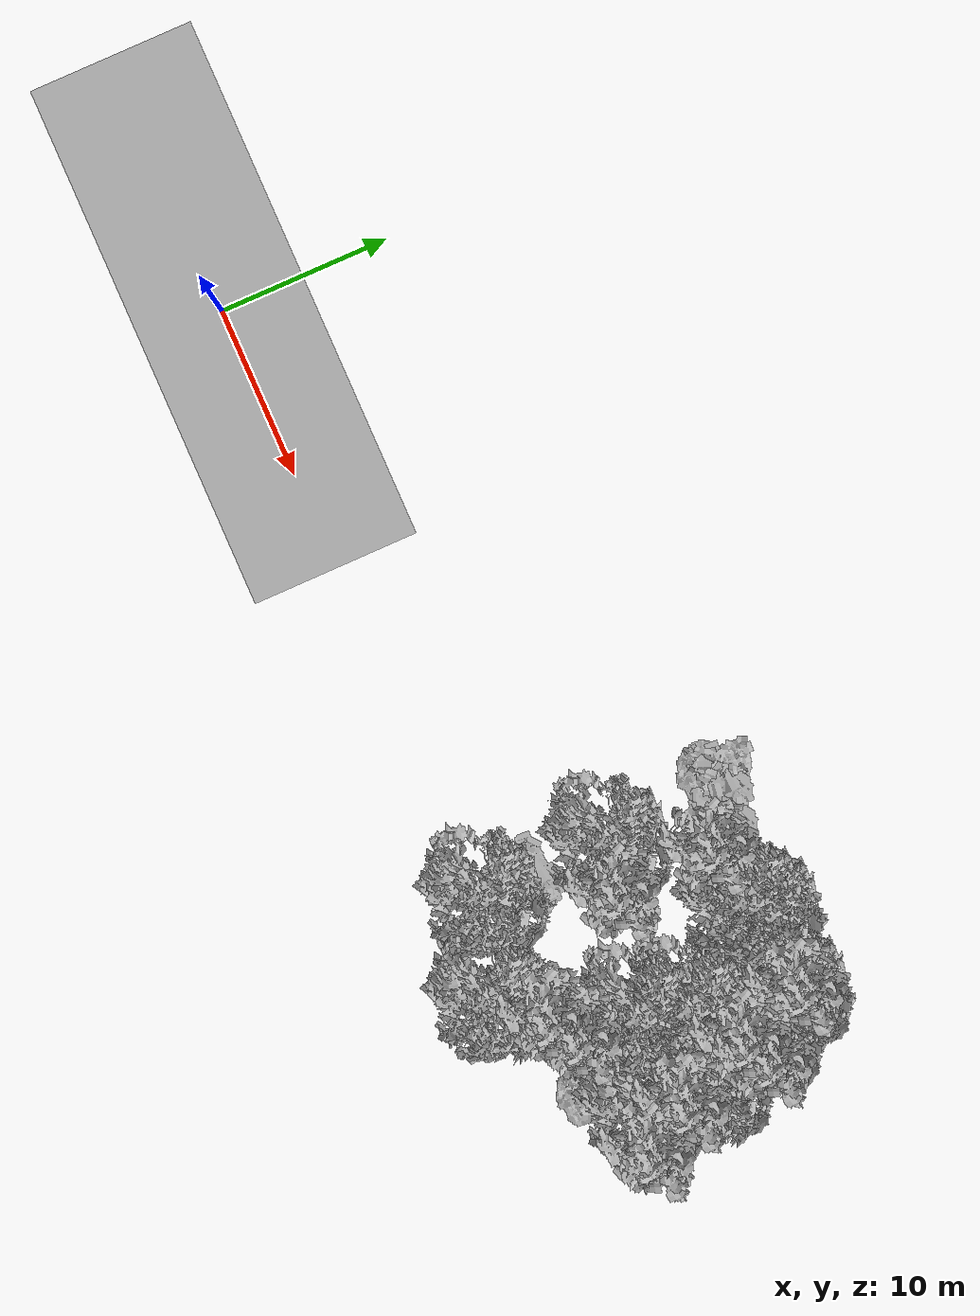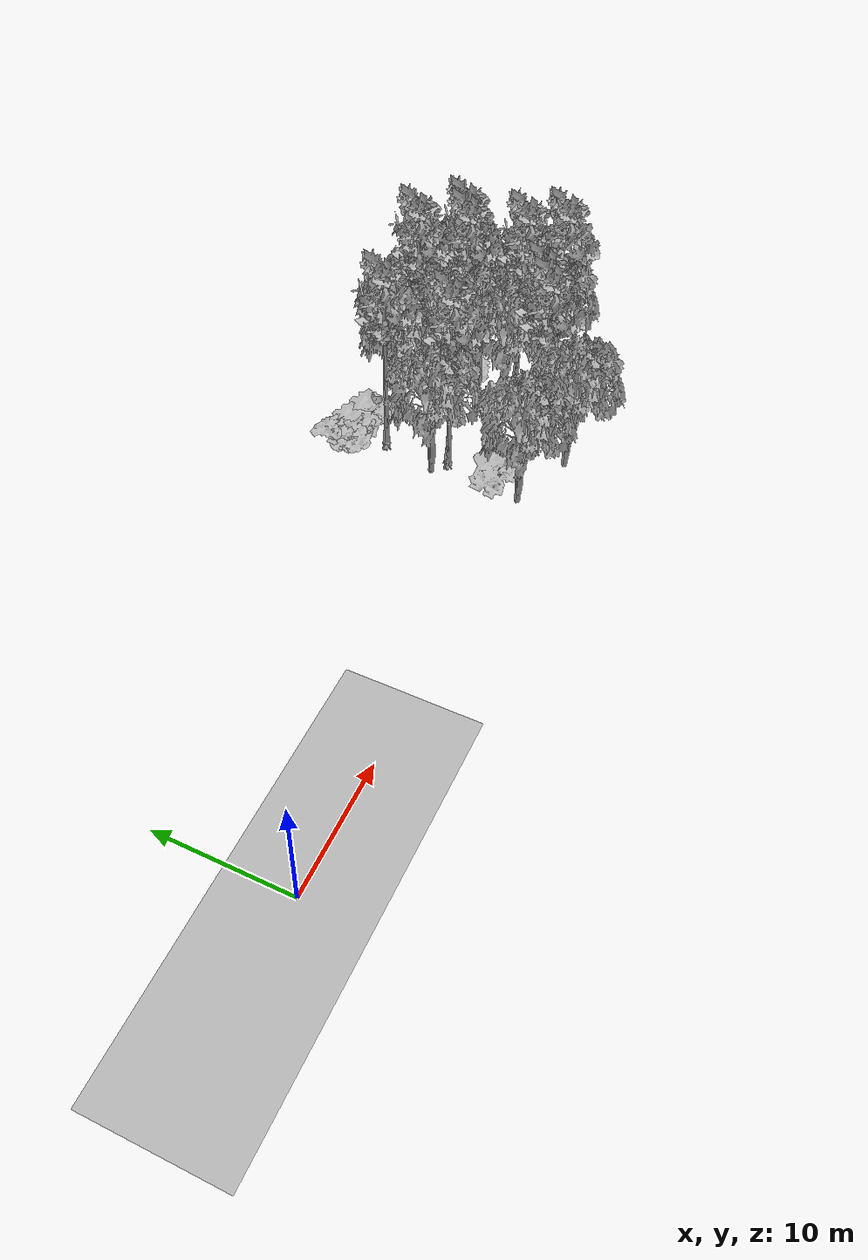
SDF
<sdf version="1.7">
 <world name="default">
  <model name="ground_plane">
   <static>1</static>
   <link name="link">
    <collision name="collision">
     <pose>-50 0 0 0 -0 0</pose>
     <geometry><plane><normal>0 0 1</normal><size>100 100</size></plane></geometry>
     <surface><contact><ode><min_depth>0.01</min_depth><max_vel>0</max_vel></ode></contact></surface>
    </collision>
    <visual name="grass">
     <cast_shadows>0</cast_shadows>
     <geometry>
      <mesh>
       <scale>0.5814285714285714 0.18142857142857144 0.1</scale>
       <uri>file://grass_plane/meshes/grass_plane.dae</uri>
      </mesh>
     </geometry>
    </visual>
   </link>
  </model>
  <model name="Tree 5">
   <static>1</static>
   <pose>35.32782295275514 2.653738546690043 0 1.57079 -0 0</pose>
   <link name="link">
    <collision name="collision">
     <geometry><mesh><scale>3 2 3</scale><uri>model://tree_3/meshes/tree_3.obj</uri></mesh></geometry>
    </collision>
    <visual name="visual">
     <geometry><mesh><scale>3 2 3</scale><uri>model://tree_3/meshes/tree_3.obj</uri></mesh></geometry>
    </visual>
   </link>
  </model>
  <model name="Tree 8">
   <static>1</static>
   <pose>34.388358188484276 0.6151273616343111 0 1.57079 -0 0</pose>
   <link name="link">
    <collision name="collision">
     <geometry><mesh><scale>3.5 5 3.5</scale><uri>model://tree_2/meshes/tree_2.obj</uri></mesh></geometry>
    </collision>
    <visual name="visual">
     <geometry><mesh><scale>3.5 5 3.5</scale><uri>model://tree_2/meshes/tree_2.obj</uri></mesh></geometry>
    </visual>
   </link>
  </model>
  <model name="Tree 14">
   <static>1</static>
   <pose>39.300211839281104 -1.1267173630179173 0 1.57079 -0 0</pose>
   <link name="link">
    <collision name="collision">
     <geometry><mesh><scale>3.5 5 3.5</scale><uri>model://tree_2/meshes/tree_2.obj</uri></mesh></geometry>
    </collision>
    <visual name="visual">
     <geometry><mesh><scale>3.5 5 3.5</scale><uri>model://tree_2/meshes/tree_2.obj</uri></mesh></geometry>
    </visual>
   </link>
  </model>
  <model name="Tree 26">
   <static>1</static>
   <pose>44.80414023411129 9.549171326828073 0 1.57079 -0 0</pose>
   <link name="link">
    <collision name="collision">
     <geometry><mesh><scale>3.5 5 3.5</scale><uri>model://tree_9/meshes/tree_9.obj</uri></mesh></geometry>
    </collision>
    <visual name="visual">
     <geometry><mesh><scale>3.5 5 3.5</scale><uri>model://tree_9/meshes/tree_9.obj</uri></mesh></geometry>
    </visual>
   </link>
  </model>
  <model name="Tree 27">
   <static>1</static>
   <pose>41.535559727347135 2.414591668651479 0 1.57079 -0 0</pose>
   <link name="link">
    <collision name="collision">
     <geometry><mesh><scale>3.5 5 3.5</scale><uri>model://tree_9/meshes/tree_9.obj</uri></mesh></geometry>
    </collision>
    <visual name="visual">
     <geometry><mesh><scale>3.5 5 3.5</scale><uri>model://tree_9/meshes/tree_9.obj</uri></mesh></geometry>
    </visual>
   </link>
  </model>
  <model name="Tree 28">
   <static>1</static>
   <pose>40.68554744184236 13.04091409627748 0 1.57079 -0 0</pose>
   <link name="link">
    <collision name="collision">
     <geometry><mesh><scale>3.5 5 3.5</scale><uri>model://tree_2/meshes/tree_2.obj</uri></mesh></geometry>
    </collision>
    <visual name="visual">
     <geometry><mesh><scale>3.5 5 3.5</scale><uri>model://tree_2/meshes/tree_2.obj</uri></mesh></geometry>
    </visual>
   </link>
  </model>
  <model name="Tree 62">
   <static>1</static>
   <pose>36.753705225285614 13.57287621638202 0 1.57079 -0 0</pose>
   <link name="link">
    <collision name="collision">
     <geometry><mesh><scale>3 2 3</scale><uri>model://tree_3/meshes/tree_3.obj</uri></mesh></geometry>
    </collision>
    <visual name="visual">
     <geometry><mesh><scale>3 2 3</scale><uri>model://tree_3/meshes/tree_3.obj</uri></mesh></geometry>
    </visual>
   </link>
  </model>
  <model name="Tree 76">
   <static>1</static>
   <pose>46.47620760101657 5.7712548583258325 0 1.57079 -0 0</pose>
   <link name="link">
    <collision name="collision">
     <geometry><mesh><scale>3.5 5 3.5</scale><uri>model://tree_9/meshes/tree_9.obj</uri></mesh></geometry>
    </collision>
    <visual name="visual">
     <geometry><mesh><scale>3.5 5 3.5</scale><uri>model://tree_9/meshes/tree_9.obj</uri></mesh></geometry>
    </visual>
   </link>
  </model>
  <model name="Tree 83">
   <static>1</static>
   <pose>43.65297399762686 12.909925443973918 0 1.57079 -0 0</pose>
   <link name="link">
    <collision name="collision">
     <geometry><mesh><scale>3.5 5 3.5</scale><uri>model://tree_9/meshes/tree_9.obj</uri></mesh></geometry>
    </collision>
    <visual name="visual">
     <geometry><mesh><scale>3.5 5 3.5</scale><uri>model://tree_9/meshes/tree_9.obj</uri></mesh></geometry>
    </visual>
   </link>
  </model>
  <model name="Tree 106">
   <static>1</static>
   <pose>40.19865287262731 1.4744564559954938 0 1.57079 -0 0</pose>
   <link name="link">
    <collision name="collision">
     <geometry><mesh><scale>3.5 5 3.5</scale><uri>model://tree_9/meshes/tree_9.obj</uri></mesh></geometry>
    </collision>
    <visual name="visual">
     <geometry><mesh><scale>3.5 5 3.5</scale><uri>model://tree_9/meshes/tree_9.obj</uri></mesh></geometry>
    </visual>
   </link>
  </model>
  <model name="Tree 126">
   <static>1</static>
   <pose>34.953597942023066 14.09231203770052 0 1.57079 -0 0</pose>
   <link name="link">
    <collision name="collision">
     <geometry><mesh><scale>3 2 3</scale><uri>model://tree_3/meshes/tree_3.obj</uri></mesh></geometry>
    </collision>
    <visual name="visual">
     <geometry><mesh><scale>3 2 3</scale><uri>model://tree_3/meshes/tree_3.obj</uri></mesh></geometry>
    </visual>
   </link>
  </model>
  <model name="Tree 151">
   <static>1</static>
   <pose>44.89156026248045 12.742051767275242 0 1.57079 -0 0</pose>
   <link name="link">
    <collision name="collision">
     <geometry><mesh><scale>3.5 5 3.5</scale><uri>model://tree_2/meshes/tree_2.obj</uri></mesh></geometry>
    </collision>
    <visual name="visual">
     <geometry><mesh><scale>3.5 5 3.5</scale><uri>model://tree_2/meshes/tree_2.obj</uri></mesh></geometry>
    </visual>
   </link>
  </model>
  <model name="Tree 185">
   <static>1</static>
   <pose>47.398513358384335 1.4371822637768545 0 1.57079 -0 0</pose>
   <link name="link">
    <collision name="collision">
     <geometry><mesh><scale>4 2.5 4</scale><uri>model://tree_1/meshes/tree_1.obj</uri></mesh></geometry>
    </collision>
    <visual name="visual">
     <geometry><mesh><scale>4 2.5 4</scale><uri>model://tree_1/meshes/tree_1.obj</uri></mesh></geometry>
    </visual>
   </link>
  </model>
  <model name="Tree 197">
   <static>1</static>
   <pose>42.99500072723012 5.381536122347907 0 1.57079 -0 0</pose>
   <link name="link">
    <collision name="collision">
     <geometry><mesh><scale>3.5 5 3.5</scale><uri>model://tree_2/meshes/tree_2.obj</uri></mesh></geometry>
    </collision>
    <visual name="visual">
     <geometry><mesh><scale>3.5 5 3.5</scale><uri>model://tree_2/meshes/tree_2.obj</uri></mesh></geometry>
    </visual>
   </link>
  </model>
  <model name="Tree 200">
   <static>1</static>
   <pose>46.26220225470517 10.520742809994434 0 1.57079 -0 0</pose>
   <link name="link">
    <collision name="collision">
     <geometry><mesh><scale>3.5 5 3.5</scale><uri>model://tree_2/meshes/tree_2.obj</uri></mesh></geometry>
    </collision>
    <visual name="visual">
     <geometry><mesh><scale>3.5 5 3.5</scale><uri>model://tree_2/meshes/tree_2.obj</uri></mesh></geometry>
    </visual>
   </link>
  </model>
  <model name="Tree 214">
   <static>1</static>
   <pose>34.103091884015086 14.549895261962913 0 1.57079 -0 0</pose>
   <link name="link">
    <collision name="collision">
     <geometry><mesh><scale>4 2.5 4</scale><uri>model://tree_1/meshes/tree_1.obj</uri></mesh></geometry>
    </collision>
    <visual name="visual">
     <geometry><mesh><scale>4 2.5 4</scale><uri>model://tree_1/meshes/tree_1.obj</uri></mesh></geometry>
    </visual>
   </link>
  </model>
  <model name="Tree 229">
   <static>1</static>
   <pose>35.900713938711405 11.884087404679455 0 1.57079 -0 0</pose>
   <link name="link">
    <collision name="collision">
     <geometry><mesh><scale>3.5 5 3.5</scale><uri>model://tree_9/meshes/tree_9.obj</uri></mesh></geometry>
    </collision>
    <visual name="visual">
     <geometry><mesh><scale>3.5 5 3.5</scale><uri>model://tree_9/meshes/tree_9.obj</uri></mesh></geometry>
    </visual>
   </link>
  </model>
  <model name="Tree 233">
   <static>1</static>
   <pose>44.71657206406168 9.595740592521388 0 1.57079 -0 0</pose>
   <link name="link">
    <collision name="collision">
     <geometry><mesh><scale>4 2.5 4</scale><uri>model://tree_1/meshes/tree_1.obj</uri></mesh></geometry>
    </collision>
    <visual name="visual">
     <geometry><mesh><scale>4 2.5 4</scale><uri>model://tree_1/meshes/tree_1.obj</uri></mesh></geometry>
    </visual>
   </link>
  </model>
  <model name="Tree 235">
   <static>1</static>
   <pose>36.039859224172815 6.847229982083871 0 1.57079 -0 0</pose>
   <link name="link">
    <collision name="collision">
     <geometry><mesh><scale>3.5 5 3.5</scale><uri>model://tree_9/meshes/tree_9.obj</uri></mesh></geometry>
    </collision>
    <visual name="visual">
     <geometry><mesh><scale>3.5 5 3.5</scale><uri>model://tree_9/meshes/tree_9.obj</uri></mesh></geometry>
    </visual>
   </link>
  </model>
  <model name="Tree 251">
   <static>1</static>
   <pose>34.418743416199774 7.5174781374289665 0 1.57079 -0 0</pose>
   <link name="link">
    <collision name="collision">
     <geometry><mesh><scale>3.5 5 3.5</scale><uri>model://tree_2/meshes/tree_2.obj</uri></mesh></geometry>
    </collision>
    <visual name="visual">
     <geometry><mesh><scale>3.5 5 3.5</scale><uri>model://tree_2/meshes/tree_2.obj</uri></mesh></geometry>
    </visual>
   </link>
  </model>
  <model name="Tree 252">
   <static>1</static>
   <pose>47.30511298520918 3.7915482580942346 0 1.57079 -0 0</pose>
   <link name="link">
    <collision name="collision">
     <geometry><mesh><scale>3.5 5 3.5</scale><uri>model://tree_2/meshes/tree_2.obj</uri></mesh></geometry>
    </collision>
    <visual name="visual">
     <geometry><mesh><scale>3.5 5 3.5</scale><uri>model://tree_2/meshes/tree_2.obj</uri></mesh></geometry>
    </visual>
   </link>
  </model>
  <model name="Tree 271">
   <static>1</static>
   <pose>39.928612101440194 12.510698065015657 0 1.57079 -0 0</pose>
   <link name="link">
    <collision name="collision">
     <geometry><mesh><scale>3.5 5 3.5</scale><uri>model://tree_2/meshes/tree_2.obj</uri></mesh></geometry>
    </collision>
    <visual name="visual">
     <geometry><mesh><scale>3.5 5 3.5</scale><uri>model://tree_2/meshes/tree_2.obj</uri></mesh></geometry>
    </visual>
   </link>
  </model>
  <model name="Tree 272">
   <static>1</static>
   <pose>43.66088238600334 7.850054366103237 0 1.57079 -0 0</pose>
   <link name="link">
    <collision name="collision">
     <geometry><mesh><scale>3.5 5 3.5</scale><uri>model://tree_2/meshes/tree_2.obj</uri></mesh></geometry>
    </collision>
    <visual name="visual">
     <geometry><mesh><scale>3.5 5 3.5</scale><uri>model://tree_2/meshes/tree_2.obj</uri></mesh></geometry>
    </visual>
   </link>
  </model>
  <model name="Tree 275">
   <static>1</static>
   <pose>47.52958067496421 7.1638117309579386 0 1.57079 -0 0</pose>
   <link name="link">
    <collision name="collision">
     <geometry><mesh><scale>3.5 5 3.5</scale><uri>model://tree_2/meshes/tree_2.obj</uri></mesh></geometry>
    </collision>
    <visual name="visual">
     <geometry><mesh><scale>3.5 5 3.5</scale><uri>model://tree_2/meshes/tree_2.obj</uri></mesh></geometry>
    </visual>
   </link>
  </model>
  <model name="Tree 277">
   <static>1</static>
   <pose>46.09477515415959 10.209043490575489 0 1.57079 -0 0</pose>
   <link name="link">
    <collision name="collision">
     <geometry><mesh><scale>3.5 5 3.5</scale><uri>model://tree_9/meshes/tree_9.obj</uri></mesh></geometry>
    </collision>
    <visual name="visual">
     <geometry><mesh><scale>3.5 5 3.5</scale><uri>model://tree_9/meshes/tree_9.obj</uri></mesh></geometry>
    </visual>
   </link>
  </model>
  <model name="Tree 289">
   <static>1</static>
   <pose>47.92449971007943 3.322135580790871 0 1.57079 -0 0</pose>
   <link name="link">
    <collision name="collision">
     <geometry><mesh><scale>3.5 5 3.5</scale><uri>model://tree_9/meshes/tree_9.obj</uri></mesh></geometry>
    </collision>
    <visual name="visual">
     <geometry><mesh><scale>3.5 5 3.5</scale><uri>model://tree_9/meshes/tree_9.obj</uri></mesh></geometry>
    </visual>
   </link>
  </model>
 </world>
</sdf>
